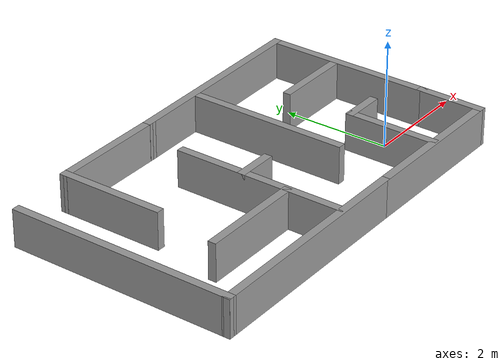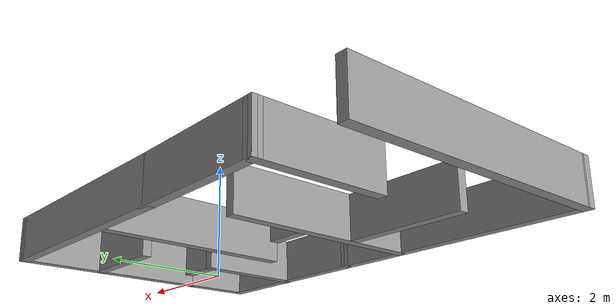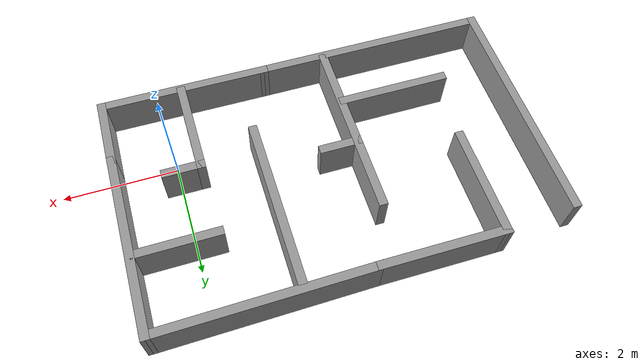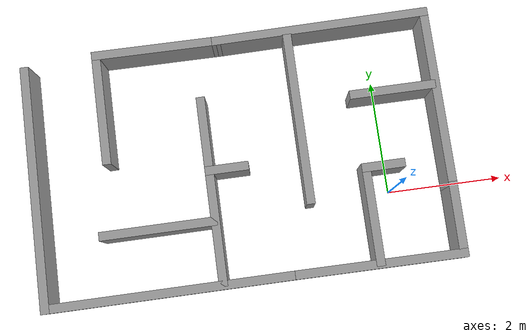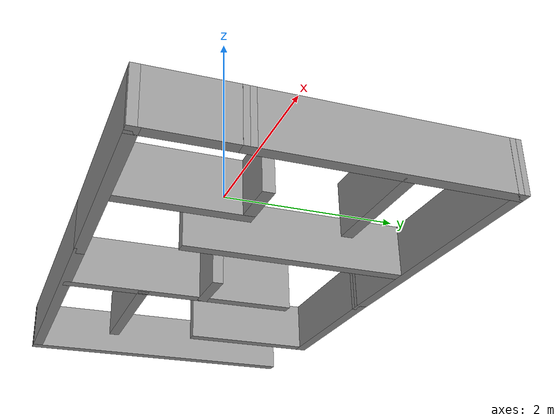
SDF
<?xml version='1.0'?>
<sdf version='1.7'>
  <model name='maze_2'>
    <pose>-2.50835 0.888785 0 0 -0 0</pose>
    <link name='Wall_0'>
      <collision name='Wall_0_Collision'>
        <geometry>
          <box>
            <size>3.07134 0.15 0.7</size>
          </box>
        </geometry>
        <pose>0 0 0.35 0 -0 0</pose>
      </collision>
      <visual name='Wall_0_Visual'>
        <pose>0 0 0.35 0 -0 0</pose>
        <geometry>
          <box>
            <size>3.07134 0.15 0.7</size>
          </box>
        </geometry>
        <material>
          <script>
            <uri>file://media/materials/scripts/gazebo.material</uri>
            <name>Gazebo/Grey</name>
          </script>
          <ambient>1 1 1 1</ambient>
        </material>
        <meta>
          <layer>0</layer>
        </meta>
      </visual>
      <pose>2.04485 -2.11228 0 0 -0 -0.004451</pose>
    </link>
    <link name='Wall_1'>
      <collision name='Wall_1_Collision'>
        <geometry>
          <box>
            <size>1.28749 0.15 0.7</size>
          </box>
        </geometry>
        <pose>0 0 0.35 0 -0 0</pose>
      </collision>
      <visual name='Wall_1_Visual'>
        <pose>0 0 0.35 0 -0 0</pose>
        <geometry>
          <box>
            <size>1.28749 0.15 0.7</size>
          </box>
        </geometry>
        <material>
          <script>
            <uri>file://media/materials/scripts/gazebo.material</uri>
            <name>Gazebo/Grey</name>
          </script>
          <ambient>1 1 1 1</ambient>
        </material>
        <meta>
          <layer>0</layer>
        </meta>
      </visual>
      <pose>3.51024 -1.55006 0 0 -0 1.5622</pose>
    </link>
    <link name='Wall_12'>
      <collision name='Wall_12_Collision'>
        <geometry>
          <box>
            <size>1.5 0.15 0.7</size>
          </box>
        </geometry>
        <pose>0 0 0.35 0 -0 0</pose>
      </collision>
      <visual name='Wall_12_Visual'>
        <pose>0 0 0.35 0 -0 0</pose>
        <geometry>
          <box>
            <size>1.5 0.15 0.7</size>
          </box>
        </geometry>
        <material>
          <script>
            <uri>file://media/materials/scripts/gazebo.material</uri>
            <name>Gazebo/Grey</name>
          </script>
          <ambient>1 1 1 1</ambient>
        </material>
        <meta>
          <layer>0</layer>
        </meta>
      </visual>
      <pose>2.76335 0.809215 0 0 -0 0</pose>
    </link>
    <link name='Wall_14'>
      <collision name='Wall_14_Collision'>
        <geometry>
          <box>
            <size>3 0.15 0.7</size>
          </box>
        </geometry>
        <pose>0 0 0.35 0 -0 0</pose>
      </collision>
      <visual name='Wall_14_Visual'>
        <pose>0 0 0.35 0 -0 0</pose>
        <geometry>
          <box>
            <size>3 0.15 0.7</size>
          </box>
        </geometry>
        <material>
          <script>
            <uri>file://media/materials/scripts/gazebo.material</uri>
            <name>Gazebo/Grey</name>
          </script>
          <ambient>1 1 1 1</ambient>
        </material>
        <meta>
          <layer>0</layer>
        </meta>
      </visual>
      <pose>1.08935 0.534215 0 0 -0 -1.5708</pose>
    </link>
    <link name='Wall_17'>
      <collision name='Wall_17_Collision'>
        <geometry>
          <box>
            <size>4.2497 0.15 0.7</size>
          </box>
        </geometry>
        <pose>0 0 0.35 0 -0 0</pose>
      </collision>
      <visual name='Wall_17_Visual'>
        <pose>0 0 0.35 0 -0 0</pose>
        <geometry>
          <box>
            <size>4.2497 0.15 0.7</size>
          </box>
        </geometry>
        <material>
          <script>
            <uri>file://media/materials/scripts/gazebo.material</uri>
            <name>Gazebo/Grey</name>
          </script>
          <ambient>1 1 1 1</ambient>
        </material>
        <meta>
          <layer>0</layer>
        </meta>
      </visual>
      <pose>-1.46565 -2.10579 0 0 -0 3.14159</pose>
    </link>
    <link name='Wall_18'>
      <collision name='Wall_18_Collision'>
        <geometry>
          <box>
            <size>4.2369 0.15 0.7</size>
          </box>
        </geometry>
        <pose>0 0 0.35 0 -0 0</pose>
      </collision>
      <visual name='Wall_18_Visual'>
        <pose>0 0 0.35 0 -0 0</pose>
        <geometry>
          <box>
            <size>4.2369 0.15 0.7</size>
          </box>
        </geometry>
        <material>
          <script>
            <uri>file://media/materials/scripts/gazebo.material</uri>
            <name>Gazebo/Grey</name>
          </script>
          <ambient>1 1 1 1</ambient>
        </material>
        <meta>
          <layer>0</layer>
        </meta>
      </visual>
      <pose>-3.50915 -0.062285 0 0 -0 1.56762</pose>
    </link>
    <link name='Wall_20'>
      <collision name='Wall_20_Collision'>
        <geometry>
          <box>
            <size>2.25 0.15 0.7</size>
          </box>
        </geometry>
        <pose>0 0 0.35 0 -0 0</pose>
      </collision>
      <visual name='Wall_20_Visual'>
        <pose>0 0 0.35 0 -0 0</pose>
        <geometry>
          <box>
            <size>2.25 0.15 0.7</size>
          </box>
        </geometry>
        <material>
          <script>
            <uri>file://media/materials/scripts/gazebo.material</uri>
            <name>Gazebo/Grey</name>
          </script>
          <ambient>1 1 1 1</ambient>
        </material>
        <meta>
          <layer>0</layer>
        </meta>
      </visual>
      <pose>-1.20265 2.08772 0 0 -0 3.1354</pose>
    </link>
    <link name='Wall_3'>
      <collision name='Wall_3_Collision'>
        <geometry>
          <box>
            <size>1.75 0.15 0.7</size>
          </box>
        </geometry>
        <pose>0 0 0.35 0 -0 0</pose>
      </collision>
      <visual name='Wall_3_Visual'>
        <pose>0 0 0.35 0 -0 0</pose>
        <geometry>
          <box>
            <size>1.75 0.15 0.7</size>
          </box>
        </geometry>
        <material>
          <script>
            <uri>file://media/materials/scripts/gazebo.material</uri>
            <name>Gazebo/Grey</name>
          </script>
          <ambient>1 1 1 1</ambient>
        </material>
        <meta>
          <layer>0</layer>
        </meta>
      </visual>
      <pose>2.10035 -1.27578 0 0 -0 1.5708</pose>
    </link>
    <link name='Wall_33'>
      <collision name='Wall_33_Collision'>
        <geometry>
          <box>
            <size>3.25 0.15 0.7</size>
          </box>
        </geometry>
        <pose>0 0 0.35 0 -0 0</pose>
      </collision>
      <visual name='Wall_33_Visual'>
        <pose>0 0 0.35 0 -0 0</pose>
        <geometry>
          <box>
            <size>3.25 0.15 0.7</size>
          </box>
        </geometry>
        <material>
          <script>
            <uri>file://media/materials/scripts/gazebo.material</uri>
            <name>Gazebo/Grey</name>
          </script>
          <ambient>1 1 1 1</ambient>
        </material>
        <meta>
          <layer>0</layer>
        </meta>
      </visual>
      <pose>-0.54365 -0.504785 0 0 -0 1.5708</pose>
    </link>
    <link name='Wall_35'>
      <collision name='Wall_35_Collision'>
        <geometry>
          <box>
            <size>0.75 0.15 0.7</size>
          </box>
        </geometry>
        <pose>0 0 0.35 0 -0 0</pose>
      </collision>
      <visual name='Wall_35_Visual'>
        <pose>0 0 0.35 0 -0 0</pose>
        <geometry>
          <box>
            <size>0.75 0.15 0.7</size>
          </box>
        </geometry>
        <material>
          <script>
            <uri>file://media/materials/scripts/gazebo.material</uri>
            <name>Gazebo/Grey</name>
          </script>
          <ambient>1 1 1 1</ambient>
        </material>
        <meta>
          <layer>0</layer>
        </meta>
      </visual>
      <pose>-0.24365 -0.168785 0 0 -0 0</pose>
    </link>
    <link name='Wall_38'>
      <collision name='Wall_38_Collision'>
        <geometry>
          <box>
            <size>2.00012 0.15 0.7</size>
          </box>
        </geometry>
        <pose>0 0 0.35 0 -0 0</pose>
      </collision>
      <visual name='Wall_38_Visual'>
        <pose>0 0 0.35 0 -0 0</pose>
        <geometry>
          <box>
            <size>2.00012 0.15 0.7</size>
          </box>
        </geometry>
        <material>
          <script>
            <uri>file://media/materials/scripts/gazebo.material</uri>
            <name>Gazebo/Grey</name>
          </script>
          <ambient>1 1 1 1</ambient>
        </material>
        <meta>
          <layer>0</layer>
        </meta>
      </visual>
      <pose>-2.25265 1.16921 0 0 -0 -1.5708</pose>
    </link>
    <link name='Wall_4'>
      <collision name='Wall_4_Collision'>
        <geometry>
          <box>
            <size>0.75 0.15 0.7</size>
          </box>
        </geometry>
        <pose>0 0 0.35 0 -0 0</pose>
      </collision>
      <visual name='Wall_4_Visual'>
        <pose>0 0 0.35 0 -0 0</pose>
        <geometry>
          <box>
            <size>0.75 0.15 0.7</size>
          </box>
        </geometry>
        <material>
          <script>
            <uri>file://media/materials/scripts/gazebo.material</uri>
            <name>Gazebo/Grey</name>
          </script>
          <ambient>1 1 1 1</ambient>
        </material>
        <meta>
          <layer>0</layer>
        </meta>
      </visual>
      <pose>2.40035 -0.475785 0 0 -0 0</pose>
    </link>
    <link name='Wall_40'>
      <collision name='Wall_40_Collision'>
        <geometry>
          <box>
            <size>2 0.15 0.7</size>
          </box>
        </geometry>
        <pose>0 0 0.35 0 -0 0</pose>
      </collision>
      <visual name='Wall_40_Visual'>
        <pose>0 0 0.35 0 -0 0</pose>
        <geometry>
          <box>
            <size>2 0.15 0.7</size>
          </box>
        </geometry>
        <material>
          <script>
            <uri>file://media/materials/scripts/gazebo.material</uri>
            <name>Gazebo/Grey</name>
          </script>
          <ambient>1 1 1 1</ambient>
        </material>
        <meta>
          <layer>0</layer>
        </meta>
      </visual>
      <pose>-1.51265 -1.03079 0 0 -0 0</pose>
    </link>
    <link name='Wall_6'>
      <collision name='Wall_6_Collision'>
        <geometry>
          <box>
            <size>3.25 0.15 0.7</size>
          </box>
        </geometry>
        <pose>0 0 0.35 0 -0 0</pose>
      </collision>
      <visual name='Wall_6_Visual'>
        <pose>0 0 0.35 0 -0 0</pose>
        <geometry>
          <box>
            <size>3.25 0.15 0.7</size>
          </box>
        </geometry>
        <material>
          <script>
            <uri>file://media/materials/scripts/gazebo.material</uri>
            <name>Gazebo/Grey</name>
          </script>
          <ambient>1 1 1 1</ambient>
        </material>
        <meta>
          <layer>0</layer>
        </meta>
      </visual>
      <pose>3.51512 0.568665 0 0 -0 1.5708</pose>
    </link>
    <link name='Wall_7'>
      <collision name='Wall_7_Collision'>
        <geometry>
          <box>
            <size>3.81797 0.15 0.7</size>
          </box>
        </geometry>
        <pose>0 0 0.35 0 -0 0</pose>
      </collision>
      <visual name='Wall_7_Visual'>
        <pose>0 0 0.35 0 -0 0</pose>
        <geometry>
          <box>
            <size>3.81797 0.15 0.7</size>
          </box>
        </geometry>
        <material>
          <script>
            <uri>file://media/materials/scripts/gazebo.material</uri>
            <name>Gazebo/Grey</name>
          </script>
          <ambient>1 1 1 1</ambient>
        </material>
        <meta>
          <layer>0</layer>
        </meta>
      </visual>
      <pose>1.68124 2.09994 0 0 -0 -3.13138</pose>
    </link>
    <static>1</static>
  </model>
</sdf>
